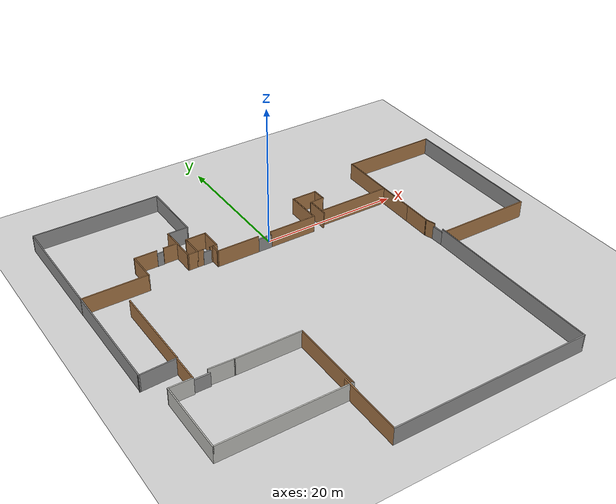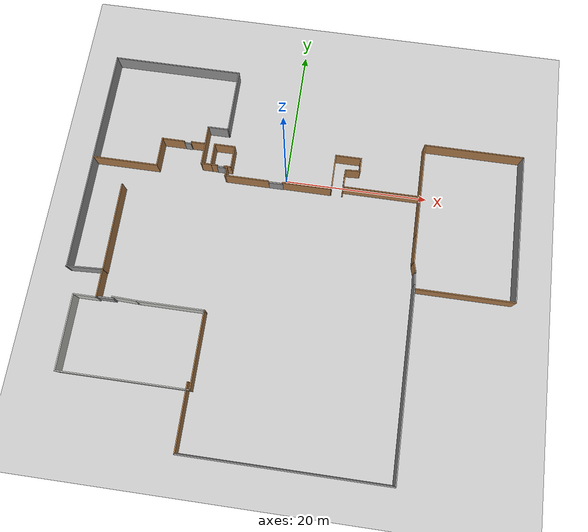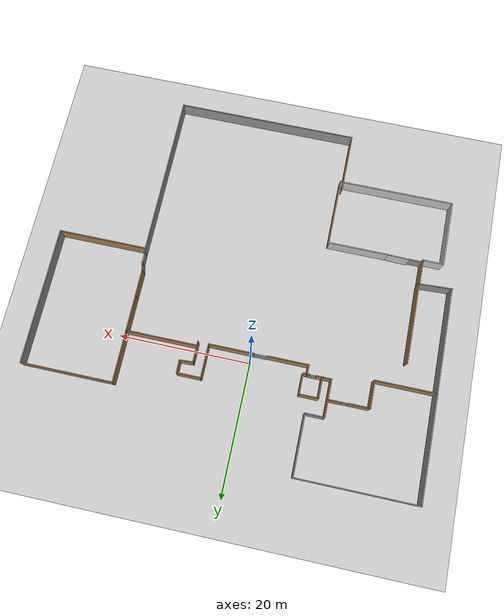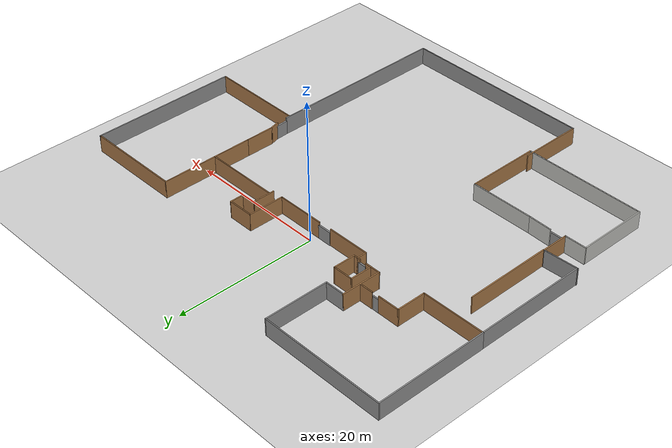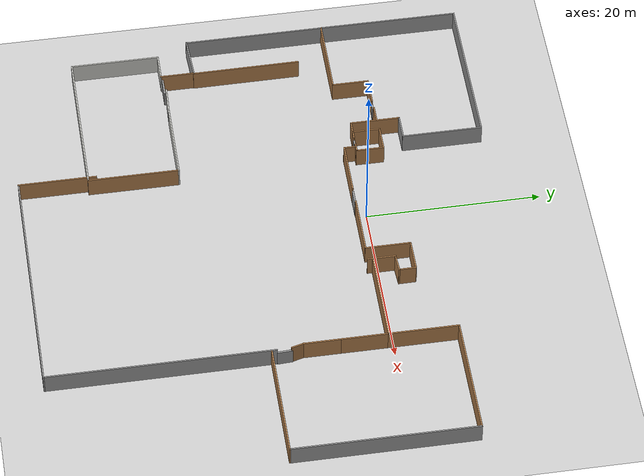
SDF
<sdf version="1.7">
 <world name="default">
  <model name="ground_plane">
   <static>1</static>
   <link name="link">
    <collision name="collision">
     <geometry><plane><normal>0 0 1</normal><size>100 100</size></plane></geometry>
     <surface>
      <contact><collide_bitmask>65535</collide_bitmask></contact>
      <friction><ode><mu>100</mu><mu2>50</mu2></ode></friction>
     </surface>
    </collision>
    <visual name="visual">
     <cast_shadows>0</cast_shadows>
     <geometry><plane><normal>0 0 1</normal><size>100 100</size></plane></geometry>
     <material>
      <script><uri>file://media/materials/scripts/gazebo.material</uri><name>Gazebo/Grey</name></script>
     </material>
    </visual>
   </link>
  </model>
  <model name="office">
   <pose>2.67279 -11.8923 0 0 -0 0</pose>
   <link name="Door_0">
    <collision name="Door_0_Collision">
     <geometry><box><size>2.03063 0.2 2</size></box></geometry>
     <pose>0 0 1 0 -0 0</pose>
    </collision>
    <visual name="Door_0_Visual">
     <pose>0 0 1 0 -0 0</pose>
     <geometry><box><size>2.03063 0.2 2</size></box></geometry>
     <material>
      <script><uri>file://media/materials/scripts/gazebo.material</uri><name>Gazebo/Grey</name></script>
     </material>
    </visual>
    <pose>-3.9593 10.7176 0 0 -0 0</pose>
   </link>
   <link name="Door_2">
    <collision name="Door_2_Collision">
     <geometry><box><size>1.16139 0.2 2</size></box></geometry>
     <pose>0 0 1 0 -0 0</pose>
    </collision>
    <visual name="Door_2_Visual">
     <pose>0 0 1 0 -0 0</pose>
     <geometry><box><size>1.16139 0.2 2</size></box></geometry>
     <material>
      <script><uri>file://media/materials/scripts/gazebo.material</uri><name>Gazebo/Grey</name></script>
     </material>
    </visual>
    <pose>-11.9544 12.039 0 0 -0 0</pose>
   </link>
   <link name="Door_3">
    <collision name="Door_3_Collision">
     <geometry><box><size>0.9 0.17 2</size></box></geometry>
     <pose>0 0 1 0 -0 0</pose>
    </collision>
    <visual name="Door_3_Visual">
     <pose>0 0 1 0 -0 0</pose>
     <geometry><box><size>0.9 0.17 2</size></box></geometry>
     <material>
      <script><uri>file://media/materials/scripts/gazebo.material</uri><name>Gazebo/Grey</name></script>
     </material>
    </visual>
    <pose>-17.2771 14.9767 0 0 -0 0</pose>
   </link>
   <link name="Door_4">
    <collision name="Door_4_Collision">
     <geometry><box><size>2.1553 0.2 2</size></box></geometry>
     <pose>0 0 1 0 -0 0</pose>
    </collision>
    <visual name="Door_4_Visual">
     <pose>0 0 1 0 -0 0</pose>
     <geometry><box><size>2.1553 0.2 2</size></box></geometry>
     <material>
      <script><uri>file://media/materials/scripts/gazebo.material</uri><name>Gazebo/Grey</name></script>
     </material>
    </visual>
    <pose>-23.9168 -8.55904 0 0 -0 0</pose>
   </link>
   <link name="Door_6">
    <collision name="Door_6_Collision">
     <geometry><box><size>1.75915 0.2 2</size></box></geometry>
     <pose>0 0 1 0 -0 0</pose>
    </collision>
    <visual name="Door_6_Visual">
     <pose>0 0 1 0 -0 0</pose>
     <geometry><box><size>1.75915 0.2 2</size></box></geometry>
     <material>
      <script><uri>file://media/materials/scripts/gazebo.material</uri><name>Gazebo/Grey</name></script>
     </material>
    </visual>
    <pose>16.5478 -0.233581 0 0 -0 -1.52535</pose>
   </link>
   <link name="Wall_0">
    <collision name="Wall_0_Collision">
     <geometry><box><size>7 0.15 2.5</size></box></geometry>
     <pose>0 0 1.25 0 -0 0</pose>
    </collision>
    <visual name="Wall_0_Visual">
     <pose>0 0 1.25 0 -0 0</pose>
     <geometry><box><size>7 0.15 2.5</size></box></geometry>
     <material>
      <script><uri>file://media/materials/scripts/gazebo.material</uri><name>Gazebo/Wood</name></script>
      <ambient>1 1 1 1</ambient>
     </material>
     <meta><layer>0</layer></meta>
    </visual>
    <pose>0.40221 10.7323 0 0 -0 0</pose>
   </link>
   <link name="Wall_1">
    <collision name="Wall_1_Collision">
     <geometry><box><size>5.25 0.15 2.5</size></box></geometry>
     <pose>0 0 1.25 0 -0 0</pose>
    </collision>
    <visual name="Wall_1_Visual">
     <pose>0 0 1.25 0 -0 0</pose>
     <geometry><box><size>5.25 0.15 2.5</size></box></geometry>
     <material>
      <script><uri>file://media/materials/scripts/gazebo.material</uri><name>Gazebo/Wood</name></script>
      <ambient>1 1 1 1</ambient>
     </material>
     <meta><layer>0</layer></meta>
    </visual>
    <pose>3.82721 13.2823 0 0 -0 1.5708</pose>
   </link>
   <link name="Wall_11">
    <collision name="Wall_11_Collision">
     <geometry><box><size>0.75 0.15 2.5</size></box></geometry>
     <pose>0 0 1.25 0 -0 0</pose>
    </collision>
    <visual name="Wall_11_Visual">
     <pose>0 0 1.25 0 -0 0</pose>
     <geometry><box><size>0.75 0.15 2.5</size></box></geometry>
     <material>
      <script><uri>file://media/materials/scripts/gazebo.material</uri><name>Gazebo/Wood</name></script>
      <ambient>1 1 1 1</ambient>
     </material>
     <meta><layer>0</layer></meta>
    </visual>
    <pose>-10.8306 12.0337 0 0 -0 0</pose>
   </link>
   <link name="Wall_12">
    <collision name="Wall_12_Collision">
     <geometry><box><size>3.25 0.15 2.5</size></box></geometry>
     <pose>0 0 1.25 0 -0 0</pose>
    </collision>
    <visual name="Wall_12_Visual">
     <pose>0 0 1.25 0 -0 0</pose>
     <geometry><box><size>3.25 0.15 2.5</size></box></geometry>
     <material>
      <script><uri>file://media/materials/scripts/gazebo.material</uri><name>Gazebo/Wood</name></script>
      <ambient>1 1 1 1</ambient>
     </material>
     <meta><layer>0</layer></meta>
    </visual>
    <pose>-10.5305 13.5837 0 0 -0 1.5708</pose>
   </link>
   <link name="Wall_13">
    <collision name="Wall_13_Collision">
     <geometry><box><size>3 0.15 2.5</size></box></geometry>
     <pose>0 0 1.25 0 -0 0</pose>
    </collision>
    <visual name="Wall_13_Visual">
     <pose>0 0 1.25 0 -0 0</pose>
     <geometry><box><size>3 0.15 2.5</size></box></geometry>
     <material>
      <script><uri>file://media/materials/scripts/gazebo.material</uri><name>Gazebo/Wood</name></script>
      <ambient>1 1 1 1</ambient>
     </material>
     <meta><layer>0</layer></meta>
    </visual>
    <pose>-11.9556 15.1337 0 0 -0 3.14159</pose>
   </link>
   <link name="Wall_14">
    <collision name="Wall_14_Collision">
     <geometry><box><size>3.25 0.15 2.5</size></box></geometry>
     <pose>0 0 1.25 0 -0 0</pose>
    </collision>
    <visual name="Wall_14_Visual">
     <pose>0 0 1.25 0 -0 0</pose>
     <geometry><box><size>3.25 0.15 2.5</size></box></geometry>
     <material>
      <script><uri>file://media/materials/scripts/gazebo.material</uri><name>Gazebo/Wood</name></script>
      <ambient>1 1 1 1</ambient>
     </material>
     <meta><layer>0</layer></meta>
    </visual>
    <pose>-13.3805 13.5837 0 0 -0 -1.5708</pose>
   </link>
   <link name="Wall_15">
    <collision name="Wall_15_Collision">
     <geometry><box><size>1 0.15 2.5</size></box></geometry>
     <pose>0 0 1.25 0 -0 0</pose>
    </collision>
    <visual name="Wall_15_Visual">
     <pose>0 0 1.25 0 -0 0</pose>
     <geometry><box><size>1 0.15 2.5</size></box></geometry>
     <material>
      <script><uri>file://media/materials/scripts/gazebo.material</uri><name>Gazebo/Wood</name></script>
      <ambient>1 1 1 1</ambient>
     </material>
     <meta><layer>0</layer></meta>
    </visual>
    <pose>-12.9556 12.0337 0 0 -0 0</pose>
   </link>
   <link name="Wall_17">
    <collision name="Wall_17_Collision">
     <geometry><box><size>1.5 0.15 2.5</size></box></geometry>
     <pose>0 0 1.25 0 -0 0</pose>
    </collision>
    <visual name="Wall_17_Visual">
     <pose>0 0 1.25 0 -0 0</pose>
     <geometry><box><size>1.5 0.15 2.5</size></box></geometry>
     <material>
      <script><uri>file://media/materials/scripts/gazebo.material</uri><name>Gazebo/Wood</name></script>
      <ambient>1 1 1 1</ambient>
     </material>
     <meta><layer>0</layer></meta>
    </visual>
    <pose>-14.0556 12.0337 0 0 -0 3.14159</pose>
   </link>
   <link name="Wall_18">
    <collision name="Wall_18_Collision">
     <geometry><box><size>5.75 0.15 2.5</size></box></geometry>
     <pose>0 0 1.25 0 -0 0</pose>
    </collision>
    <visual name="Wall_18_Visual">
     <pose>0 0 1.25 0 -0 0</pose>
     <geometry><box><size>5.75 0.15 2.5</size></box></geometry>
     <material>
      <script><uri>file://media/materials/scripts/gazebo.material</uri><name>Gazebo/Wood</name></script>
      <ambient>1 1 1 1</ambient>
     </material>
     <meta><layer>0</layer></meta>
    </visual>
    <pose>-14.7306 14.8337 0 0 -0 1.5708</pose>
   </link>
   <link name="Wall_19">
    <collision name="Wall_19_Collision">
     <geometry><box><size>3 0.15 2.5</size></box></geometry>
     <pose>0 0 1.25 0 -0 0</pose>
    </collision>
    <visual name="Wall_19_Visual">
     <pose>0 0 1.25 0 -0 0</pose>
     <geometry><box><size>3 0.15 2.5</size></box></geometry>
     <material>
      <script><uri>file://media/materials/scripts/gazebo.material</uri><name>Gazebo/Grey</name></script>
      <ambient>1 1 1 1</ambient>
     </material>
     <meta><layer>0</layer></meta>
    </visual>
    <pose>-13.3056 17.6337 0 0 -0 0</pose>
   </link>
   <link name="Wall_2">
    <collision name="Wall_2_Collision">
     <geometry><box><size>3.75 0.15 2.5</size></box></geometry>
     <pose>0 0 1.25 0 -0 0</pose>
    </collision>
    <visual name="Wall_2_Visual">
     <pose>0 0 1.25 0 -0 0</pose>
     <geometry><box><size>3.75 0.15 2.5</size></box></geometry>
     <material>
      <script><uri>file://media/materials/scripts/gazebo.material</uri><name>Gazebo/Wood</name></script>
      <ambient>1 1 1 1</ambient>
     </material>
     <meta><layer>0</layer></meta>
    </visual>
    <pose>5.62721 15.8323 0 0 -0 0</pose>
   </link>
   <link name="Wall_20">
    <collision name="Wall_20_Collision">
     <geometry><box><size>9.25 0.15 2.5</size></box></geometry>
     <pose>0 0 1.25 0 -0 0</pose>
    </collision>
    <visual name="Wall_20_Visual">
     <pose>0 0 1.25 0 -0 0</pose>
     <geometry><box><size>9.25 0.15 2.5</size></box></geometry>
     <material>
      <script><uri>file://media/materials/scripts/gazebo.material</uri><name>Gazebo/Grey</name></script>
      <ambient>1 1 1 1</ambient>
     </material>
     <meta><layer>0</layer></meta>
    </visual>
    <pose>-11.8805 22.1837 0 0 -0 1.5708</pose>
   </link>
   <link name="Wall_21">
    <collision name="Wall_21_Collision">
     <geometry><box><size>18.25 0.15 2.5</size></box></geometry>
     <pose>0 0 1.25 0 -0 0</pose>
    </collision>
    <visual name="Wall_21_Visual">
     <pose>0 0 1.25 0 -0 0</pose>
     <geometry><box><size>18.25 0.15 2.5</size></box></geometry>
     <material>
      <script><uri>file://media/materials/scripts/gazebo.material</uri><name>Gazebo/Grey</name></script>
      <ambient>1 1 1 1</ambient>
     </material>
     <meta><layer>0</layer></meta>
    </visual>
    <pose>-20.9306 26.7337 0 0 -0 3.14159</pose>
   </link>
   <link name="Wall_22">
    <collision name="Wall_22_Collision">
     <geometry><box><size>16 0.15 2.5</size></box></geometry>
     <pose>0 0 1.25 0 -0 0</pose>
    </collision>
    <visual name="Wall_22_Visual">
     <pose>0 0 1.25 0 -0 0</pose>
     <geometry><box><size>16 0.15 2.5</size></box></geometry>
     <material>
      <script><uri>file://media/materials/scripts/gazebo.material</uri><name>Gazebo/Grey</name></script>
      <ambient>1 1 1 1</ambient>
     </material>
     <meta><layer>0</layer></meta>
    </visual>
    <pose>-29.9806 18.8087 0 0 -0 -1.5708</pose>
   </link>
   <link name="Wall_23">
    <collision name="Wall_23_Collision">
     <geometry><box><size>9.25 0.15 2.5</size></box></geometry>
     <pose>0 0 1.25 0 -0 0</pose>
    </collision>
    <visual name="Wall_23_Visual">
     <pose>0 0 1.25 0 -0 0</pose>
     <geometry><box><size>9.25 0.15 2.5</size></box></geometry>
     <material>
      <script><uri>file://media/materials/scripts/gazebo.material</uri><name>Gazebo/Wood</name></script>
      <ambient>1 0.764706 0.305882 1</ambient>
     </material>
     <meta><layer>0</layer></meta>
    </visual>
    <pose>-25.4306 10.8837 0 0 -0 0</pose>
   </link>
   <link name="Wall_24">
    <collision name="Wall_24_Collision">
     <geometry><box><size>4.25 0.15 2.5</size></box></geometry>
     <pose>0 0 1.25 0 -0 0</pose>
    </collision>
    <visual name="Wall_24_Visual">
     <pose>0 0 1.25 0 -0 0</pose>
     <geometry><box><size>4.25 0.15 2.5</size></box></geometry>
     <material>
      <script><uri>file://media/materials/scripts/gazebo.material</uri><name>Gazebo/Wood</name></script>
      <ambient>1 1 1 1</ambient>
     </material>
     <meta><layer>0</layer></meta>
    </visual>
    <pose>-20.8805 12.9337 0 0 -0 1.5708</pose>
   </link>
   <link name="Wall_25">
    <collision name="Wall_25_Collision">
     <geometry><box><size>3.25 0.15 2.5</size></box></geometry>
     <pose>0 0 1.25 0 -0 0</pose>
    </collision>
    <visual name="Wall_25_Visual">
     <pose>0 0 1.25 0 -0 0</pose>
     <geometry><box><size>3.25 0.15 2.5</size></box></geometry>
     <material>
      <script><uri>file://media/materials/scripts/gazebo.material</uri><name>Gazebo/Wood</name></script>
      <ambient>1 1 1 1</ambient>
     </material>
     <meta><layer>0</layer></meta>
    </visual>
    <pose>-19.3306 14.9837 0 0 -0 0</pose>
   </link>
   <link name="Wall_27">
    <collision name="Wall_27_Collision">
     <geometry><box><size>2 0.15 2.5</size></box></geometry>
     <pose>0 0 1.25 0 -0 0</pose>
    </collision>
    <visual name="Wall_27_Visual">
     <pose>0 0 1.25 0 -0 0</pose>
     <geometry><box><size>2 0.15 2.5</size></box></geometry>
     <material>
      <script><uri>file://media/materials/scripts/gazebo.material</uri><name>Gazebo/Wood</name></script>
      <ambient>1 1 1 1</ambient>
     </material>
     <meta><layer>0</layer></meta>
    </visual>
    <pose>-15.7672 15.0301 0 0 -0 0</pose>
   </link>
   <link name="Wall_29">
    <collision name="Wall_29_Collision">
     <geometry><box><size>12.4017 0.15 2.5</size></box></geometry>
     <pose>0 0 1.25 0 -0 0</pose>
    </collision>
    <visual name="Wall_29_Visual">
     <pose>0 0 1.25 0 -0 0</pose>
     <geometry><box><size>12.4017 0.15 2.5</size></box></geometry>
     <material>
      <script><uri>file://media/materials/scripts/gazebo.material</uri><name>Gazebo/Wood</name></script>
      <ambient>1 1 1 1</ambient>
     </material>
     <meta><layer>0</layer></meta>
    </visual>
    <pose>-25.0438 1.25336 0 0 -0 -1.56502</pose>
   </link>
   <link name="Wall_3">
    <collision name="Wall_3_Collision">
     <geometry><box><size>2.03994 0.15 2.5</size></box></geometry>
     <pose>0 0 1.25 0 -0 0</pose>
    </collision>
    <visual name="Wall_3_Visual">
     <pose>0 0 1.25 0 -0 0</pose>
     <geometry><box><size>2.03994 0.15 2.5</size></box></geometry>
     <material>
      <script><uri>file://media/materials/scripts/gazebo.material</uri><name>Gazebo/Wood</name></script>
      <ambient>1 1 1 1</ambient>
     </material>
     <meta><layer>0</layer></meta>
    </visual>
    <pose>7.43536 14.8873 0 0 -0 -1.56217</pose>
   </link>
   <link name="Wall_30">
    <collision name="Wall_30_Collision">
     <geometry><box><size>5.08067 0.15 2.5</size></box></geometry>
     <pose>0 0 1.25 0 -0 0</pose>
    </collision>
    <visual name="Wall_30_Visual">
     <pose>0 0 1.25 0 -0 0</pose>
     <geometry><box><size>5.08067 0.15 2.5</size></box></geometry>
     <material>
      <script><uri>file://media/materials/scripts/gazebo.material</uri><name>Gazebo/Grey</name></script>
      <ambient>1 1 1 1</ambient>
     </material>
     <meta><layer>0</layer></meta>
    </visual>
    <pose>-27.5414 -4.9965 0 0 -0 -3.09111</pose>
   </link>
   <link name="Wall_31">
    <collision name="Wall_31_Collision">
     <geometry><box><size>16.0299 0.15 2.5</size></box></geometry>
     <pose>0 0 1.25 0 -0 0</pose>
    </collision>
    <visual name="Wall_31_Visual">
     <pose>0 0 1.25 0 -0 0</pose>
     <geometry><box><size>16.0299 0.15 2.5</size></box></geometry>
     <material>
      <script><uri>file://media/materials/scripts/gazebo.material</uri><name>Gazebo/Grey</name></script>
      <ambient>1 1 1 1</ambient>
     </material>
     <meta><layer>0</layer></meta>
    </visual>
    <pose>-29.9479 2.81888 0 0 -0 1.57271</pose>
   </link>
   <link name="Wall_33">
    <collision name="Wall_33_Collision">
     <geometry><box><size>4 0.15 2.5</size></box></geometry>
     <pose>0 0 1.25 0 -0 0</pose>
    </collision>
    <visual name="Wall_33_Visual">
     <pose>0 0 1.25 0 -0 0</pose>
     <geometry><box><size>4 0.15 2.5</size></box></geometry>
     <material>
      <script><uri>file://media/materials/scripts/gazebo.material</uri><name>Gazebo/Wood</name></script>
      <ambient>1 1 1 1</ambient>
     </material>
     <meta><layer>0</layer></meta>
    </visual>
    <pose>-25.0792 -6.79709 0 0 -0 -1.5708</pose>
   </link>
   <link name="Wall_34">
    <collision name="Wall_34_Collision">
     <geometry><box><size>3.25 0.15 2.5</size></box></geometry>
     <pose>0 0 1.25 0 -0 0</pose>
    </collision>
    <visual name="Wall_34_Visual">
     <pose>0 0 1.25 0 -0 0</pose>
     <geometry><box><size>3.25 0.15 2.5</size></box></geometry>
     <material>
      <script><uri>file://media/materials/scripts/gazebo.material</uri><name>Gazebo/CeilingTiled</name></script>
      <ambient>1 1 1 1</ambient>
     </material>
     <meta><layer>0</layer></meta>
    </visual>
    <pose>-26.6292 -8.72209 0 0 -0 3.14159</pose>
   </link>
   <link name="Wall_35">
    <collision name="Wall_35_Collision">
     <geometry><box><size>10.25 0.15 2.5</size></box></geometry>
     <pose>0 0 1.25 0 -0 0</pose>
    </collision>
    <visual name="Wall_35_Visual">
     <pose>0 0 1.25 0 -0 0</pose>
     <geometry><box><size>10.25 0.15 2.5</size></box></geometry>
     <material>
      <script><uri>file://media/materials/scripts/gazebo.material</uri><name>Gazebo/CeilingTiled</name></script>
      <ambient>1 1 1 1</ambient>
     </material>
     <meta><layer>0</layer></meta>
    </visual>
    <pose>-28.1792 -13.7721 0 0 -0 -1.5708</pose>
   </link>
   <link name="Wall_36">
    <collision name="Wall_36_Collision">
     <geometry><box><size>17.75 0.15 2.5</size></box></geometry>
     <pose>0 0 1.25 0 -0 0</pose>
    </collision>
    <visual name="Wall_36_Visual">
     <pose>0 0 1.25 0 -0 0</pose>
     <geometry><box><size>17.75 0.15 2.5</size></box></geometry>
     <material>
      <script><uri>file://media/materials/scripts/gazebo.material</uri><name>Gazebo/CeilingTiled</name></script>
      <ambient>1 1 1 1</ambient>
     </material>
     <meta><layer>0</layer></meta>
    </visual>
    <pose>-19.3792 -18.8221 0 0 -0 0</pose>
   </link>
   <link name="Wall_37">
    <collision name="Wall_37_Collision">
     <geometry><box><size>10.5 0.15 2.5</size></box></geometry>
     <pose>0 0 1.25 0 -0 0</pose>
    </collision>
    <visual name="Wall_37_Visual">
     <pose>0 0 1.25 0 -0 0</pose>
     <geometry><box><size>10.5 0.15 2.5</size></box></geometry>
     <material>
      <script><uri>file://media/materials/scripts/gazebo.material</uri><name>Gazebo/Wood</name></script>
      <ambient>1 1 1 1</ambient>
     </material>
     <meta><layer>0</layer></meta>
    </visual>
    <pose>-10.5792 -13.6471 0 0 -0 1.5708</pose>
   </link>
   <link name="Wall_38">
    <collision name="Wall_38_Collision">
     <geometry><box><size>9.25 0.15 2.5</size></box></geometry>
     <pose>0 0 1.25 0 -0 0</pose>
    </collision>
    <visual name="Wall_38_Visual">
     <pose>0 0 1.25 0 -0 0</pose>
     <geometry><box><size>9.25 0.15 2.5</size></box></geometry>
     <material>
      <script><uri>file://media/materials/scripts/gazebo.material</uri><name>Gazebo/CeilingTiled</name></script>
      <ambient>1 1 1 1</ambient>
     </material>
     <meta><layer>0</layer></meta>
    </visual>
    <pose>-15.1292 -8.47209 0 0 -0 3.14159</pose>
   </link>
   <link name="Wall_4">
    <collision name="Wall_4_Collision">
     <geometry><box><size>2.15236 0.15 2.5</size></box></geometry>
     <pose>0 0 1.25 0 -0 0</pose>
    </collision>
    <visual name="Wall_4_Visual">
     <pose>0 0 1.25 0 -0 0</pose>
     <geometry><box><size>2.15236 0.15 2.5</size></box></geometry>
     <material>
      <script><uri>file://media/materials/scripts/gazebo.material</uri><name>Gazebo/Wood</name></script>
      <ambient>1 1 1 1</ambient>
     </material>
     <meta><layer>0</layer></meta>
    </visual>
    <pose>6.45043 13.8872 0 0 -0 -3.08647</pose>
   </link>
   <link name="Wall_40">
    <collision name="Wall_40_Collision">
     <geometry><box><size>3.46142 0.15 2.5</size></box></geometry>
     <pose>0 0 1.25 0 -0 0</pose>
    </collision>
    <visual name="Wall_40_Visual">
     <pose>0 0 1.25 0 -0 0</pose>
     <geometry><box><size>3.46142 0.15 2.5</size></box></geometry>
     <material>
      <script><uri>file://media/materials/scripts/gazebo.material</uri><name>Gazebo/CeilingTiled</name></script>
      <ambient>1 1 1 1</ambient>
     </material>
     <meta><layer>0</layer></meta>
    </visual>
    <pose>-21.3339 -8.41554 0 0 -0 -0.034165</pose>
   </link>
   <link name="Wall_43">
    <collision name="Wall_43_Collision">
     <geometry><box><size>9 0.15 2.5</size></box></geometry>
     <pose>0 0 1.25 0 -0 0</pose>
    </collision>
    <visual name="Wall_43_Visual">
     <pose>0 0 1.25 0 -0 0</pose>
     <geometry><box><size>9 0.15 2.5</size></box></geometry>
     <material>
      <script><uri>file://media/materials/scripts/gazebo.material</uri><name>Gazebo/Wood</name></script>
      <ambient>1 1 1 1</ambient>
     </material>
     <meta><layer>0</layer></meta>
    </visual>
    <pose>-11.0316 -22.3087 0 0 -0 -1.5708</pose>
   </link>
   <link name="Wall_44">
    <collision name="Wall_44_Collision">
     <geometry><box><size>27.75 0.15 2.5</size></box></geometry>
     <pose>0 0 1.25 0 -0 0</pose>
    </collision>
    <visual name="Wall_44_Visual">
     <pose>0 0 1.25 0 -0 0</pose>
     <geometry><box><size>27.75 0.15 2.5</size></box></geometry>
     <material>
      <script><uri>file://media/materials/scripts/gazebo.material</uri><name>Gazebo/Grey</name></script>
      <ambient>1 1 1 1</ambient>
     </material>
     <meta><layer>0</layer></meta>
    </visual>
    <pose>2.76845 -26.7337 0 0 -0 0</pose>
   </link>
   <link name="Wall_45">
    <collision name="Wall_45_Collision">
     <geometry><box><size>25.75 0.15 2.5</size></box></geometry>
     <pose>0 0 1.25 0 -0 0</pose>
    </collision>
    <visual name="Wall_45_Visual">
     <pose>0 0 1.25 0 -0 0</pose>
     <geometry><box><size>25.75 0.15 2.5</size></box></geometry>
     <material>
      <script><uri>file://media/materials/scripts/gazebo.material</uri><name>Gazebo/Grey</name></script>
      <ambient>1 1 1 1</ambient>
     </material>
     <meta><layer>0</layer></meta>
    </visual>
    <pose>16.5684 -13.9337 0 0 -0 1.5708</pose>
   </link>
   <link name="Wall_47">
    <collision name="Wall_47_Collision">
     <geometry><box><size>10.75 0.15 2.5</size></box></geometry>
     <pose>0 0 1.25 0 -0 0</pose>
    </collision>
    <visual name="Wall_47_Visual">
     <pose>0 0 1.25 0 -0 0</pose>
     <geometry><box><size>10.75 0.15 2.5</size></box></geometry>
     <material>
      <script><uri>file://media/materials/scripts/gazebo.material</uri><name>Gazebo/Wood</name></script>
      <ambient>1 1 1 1</ambient>
     </material>
     <meta><layer>0</layer></meta>
    </visual>
    <pose>10.8572 11.3034 0 0 -0 0</pose>
   </link>
   <link name="Wall_48">
    <collision name="Wall_48_Collision">
     <geometry><box><size>5.5 0.15 2.5</size></box></geometry>
     <pose>0 0 1.25 0 -0 0</pose>
    </collision>
    <visual name="Wall_48_Visual">
     <pose>0 0 1.25 0 -0 0</pose>
     <geometry><box><size>5.5 0.15 2.5</size></box></geometry>
     <material>
      <script><uri>file://media/materials/scripts/gazebo.material</uri><name>Gazebo/Wood</name></script>
      <ambient>1 1 1 1</ambient>
     </material>
     <meta><layer>0</layer></meta>
    </visual>
    <pose>16.1572 8.6284 0 0 -0 -1.5708</pose>
   </link>
   <link name="Wall_5">
    <collision name="Wall_5_Collision">
     <geometry><box><size>3.25 0.15 2.5</size></box></geometry>
     <pose>0 0 1.25 0 -0 0</pose>
    </collision>
    <visual name="Wall_5_Visual">
     <pose>0 0 1.25 0 -0 0</pose>
     <geometry><box><size>3.25 0.15 2.5</size></box></geometry>
     <material>
      <script><uri>file://media/materials/scripts/gazebo.material</uri><name>Gazebo/Wood</name></script>
      <ambient>1 1 1 1</ambient>
     </material>
     <meta><layer>0</layer></meta>
    </visual>
    <pose>5.45077 12.2821 0 0 -0 -1.5708</pose>
   </link>
   <link name="Wall_50">
    <collision name="Wall_50_Collision">
     <geometry><box><size>8 0.15 2.5</size></box></geometry>
     <pose>0 0 1.25 0 -0 0</pose>
    </collision>
    <visual name="Wall_50_Visual">
     <pose>0 0 1.25 0 -0 0</pose>
     <geometry><box><size>8 0.15 2.5</size></box></geometry>
     <material>
      <script><uri>file://media/materials/scripts/gazebo.material</uri><name>Gazebo/Wood</name></script>
      <ambient>1 1 1 1</ambient>
     </material>
     <meta><layer>0</layer></meta>
    </visual>
    <pose>16.1572 15.2284 0 0 -0 1.5708</pose>
   </link>
   <link name="Wall_51">
    <collision name="Wall_51_Collision">
     <geometry><box><size>14 0.15 2.5</size></box></geometry>
     <pose>0 0 1.25 0 -0 0</pose>
    </collision>
    <visual name="Wall_51_Visual">
     <pose>0 0 1.25 0 -0 0</pose>
     <geometry><box><size>14 0.15 2.5</size></box></geometry>
     <material>
      <script><uri>file://media/materials/scripts/gazebo.material</uri><name>Gazebo/Wood</name></script>
      <ambient>1 1 1 1</ambient>
     </material>
     <meta><layer>0</layer></meta>
    </visual>
    <pose>23.0822 19.1534 0 0 -0 0</pose>
   </link>
   <link name="Wall_52">
    <collision name="Wall_52_Collision">
     <geometry><box><size>21 0.15 2.5</size></box></geometry>
     <pose>0 0 1.25 0 -0 0</pose>
    </collision>
    <visual name="Wall_52_Visual">
     <pose>0 0 1.25 0 -0 0</pose>
     <geometry><box><size>21 0.15 2.5</size></box></geometry>
     <material>
      <script><uri>file://media/materials/scripts/gazebo.material</uri><name>Gazebo/Grey</name></script>
      <ambient>1 1 1 1</ambient>
     </material>
     <meta><layer>0</layer></meta>
    </visual>
    <pose>30.0072 8.7284 0 0 -0 -1.5708</pose>
   </link>
   <link name="Wall_53">
    <collision name="Wall_53_Collision">
     <geometry><box><size>13.5 0.15 2.5</size></box></geometry>
     <pose>0 0 1.25 0 -0 0</pose>
    </collision>
    <visual name="Wall_53_Visual">
     <pose>0 0 1.25 0 -0 0</pose>
     <geometry><box><size>13.5 0.15 2.5</size></box></geometry>
     <material>
      <script><uri>file://media/materials/scripts/gazebo.material</uri><name>Gazebo/Wood</name></script>
      <ambient>1 1 1 1</ambient>
     </material>
     <meta><layer>0</layer></meta>
    </visual>
    <pose>23.3322 -1.6966 0 0 -0 3.14159</pose>
   </link>
   <link name="Wall_55">
    <collision name="Wall_55_Collision">
     <geometry><box><size>4.25 0.15 2.5</size></box></geometry>
     <pose>0 0 1.25 0 -0 0</pose>
    </collision>
    <visual name="Wall_55_Visual">
     <pose>0 0 1.25 0 -0 0</pose>
     <geometry><box><size>4.25 0.15 2.5</size></box></geometry>
     <material>
      <script><uri>file://media/materials/scripts/gazebo.material</uri><name>Gazebo/Wood</name></script>
      <ambient>1 1 1 1</ambient>
     </material>
     <meta><layer>0</layer></meta>
    </visual>
    <pose>16.1572 3.9034 0 0 -0 -1.5708</pose>
   </link>
   <link name="Wall_56">
    <collision name="Wall_56_Collision">
     <geometry><box><size>1.5 0.15 2.5</size></box></geometry>
     <pose>0 0 1.25 0 -0 0</pose>
    </collision>
    <visual name="Wall_56_Visual">
     <pose>0 0 1.25 0 -0 0</pose>
     <geometry><box><size>1.5 0.15 2.5</size></box></geometry>
     <material>
      <script><uri>file://media/materials/scripts/gazebo.material</uri><name>Gazebo/Wood</name></script>
      <ambient>1 1 1 1</ambient>
     </material>
     <meta><layer>0</layer></meta>
    </visual>
    <pose>16.3319 1.2014 0 0 -0 -1.309</pose>
   </link>
   <link name="Wall_7">
    <collision name="Wall_7_Collision">
     <geometry><box><size>6.25 0.15 2.5</size></box></geometry>
     <pose>0 0 1.25 0 -0 0</pose>
    </collision>
    <visual name="Wall_7_Visual">
     <pose>0 0 1.25 0 -0 0</pose>
     <geometry><box><size>6.25 0.15 2.5</size></box></geometry>
     <material>
      <script><uri>file://media/materials/scripts/gazebo.material</uri><name>Gazebo/Wood</name></script>
      <ambient>1 1 1 1</ambient>
     </material>
     <meta><layer>0</layer></meta>
    </visual>
    <pose>-8.08055 10.6837 0 0 -0 3.14159</pose>
   </link>
   <link name="Wall_8">
    <collision name="Wall_8_Collision">
     <geometry><box><size>1.5 0.15 2.5</size></box></geometry>
     <pose>0 0 1.25 0 -0 0</pose>
    </collision>
    <visual name="Wall_8_Visual">
     <pose>0 0 1.25 0 -0 0</pose>
     <geometry><box><size>1.5 0.15 2.5</size></box></geometry>
     <material>
      <script><uri>file://media/materials/scripts/gazebo.material</uri><name>Gazebo/Wood</name></script>
      <ambient>1 1 1 1</ambient>
     </material>
     <meta><layer>0</layer></meta>
    </visual>
    <pose>-11.1305 11.3587 0 0 -0 1.5708</pose>
   </link>
   <link name="Wall_9">
    <collision name="Wall_9_Collision">
     <geometry><box><size>0.5 0.15 2.5</size></box></geometry>
     <pose>0 0 1.25 0 -0 0</pose>
    </collision>
    <visual name="Wall_9_Visual">
     <pose>0 0 1.25 0 -0 0</pose>
     <geometry><box><size>0.5 0.15 2.5</size></box></geometry>
     <material>
      <script><uri>file://media/materials/scripts/gazebo.material</uri><name>Gazebo/Wood</name></script>
      <ambient>1 1 1 1</ambient>
     </material>
     <meta><layer>0</layer></meta>
    </visual>
    <pose>-11.3056 12.0337 0 0 -0 3.14159</pose>
   </link>
   <static>1</static>
  </model>
 </world>
</sdf>
